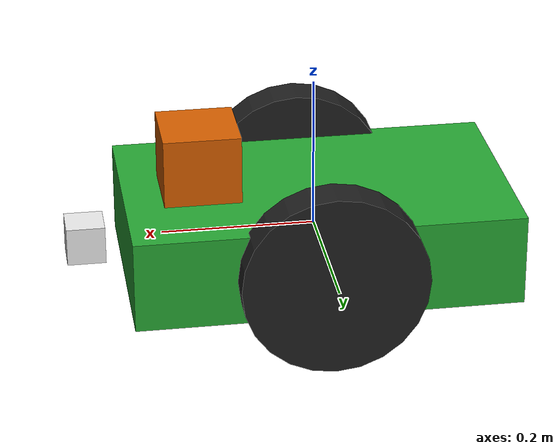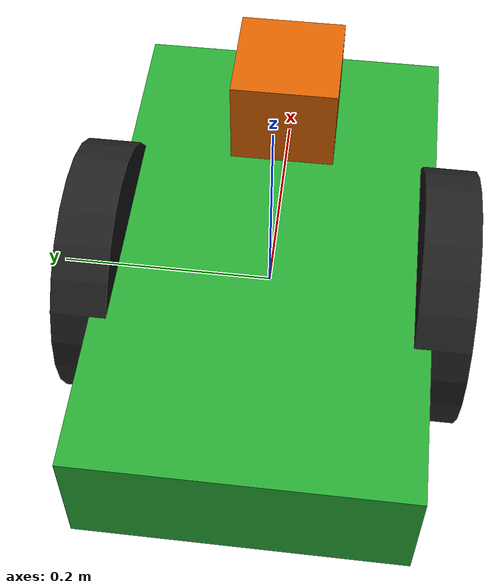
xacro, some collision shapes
<?xml version='1.0'?>

<robot name="my_robot" xmlns:xacro="http://www.ros.org/wiki/xacro">
  <xacro:include filename="$(find my_robot)/urdf/my_robot.gazebo" />

  <link name="robot_footprint"></link>

  <joint name="robot_footprint_joint" type="fixed">
    <origin xyz="0 0 0" rpy="0 0 0" />
    <parent link="robot_footprint"/>
    <child link="chassis" />
  </joint>

  <link name= 'left_wheel'>

    <inertial>
      <mass value="5.0"/>
      <origin xyz="0.0 0 0" rpy=" 0 1.5707 1.5707"/>
      <inertia
          ixx="0.1" ixy="0" ixz="0"
          iyy="0.1" iyz="0"
          izz="0.1"
      />
    </inertial>

    <collision name='collision'>
      <origin xyz="0 0 0" rpy="0 1.5707 1.5707"/>
      <geometry>
        <cylinder length="0.05" radius="0.12"/>
      </geometry>
    </collision>

    <visual name='left_wheel_visual'>
      <origin xyz="0 0 0" rpy="0 1.5707 1.5707"/>
      <geometry>
        <cylinder length="0.05" radius="0.12"/>
      </geometry>
    </visual>
  </link>

  <link name= 'right_wheel'>

    <inertial>
      <mass value="5.0"/>
      <origin xyz="0.0 0 0" rpy=" 0 1.5707 1.5707"/>
      <inertia
          ixx="0.1" ixy="0" ixz="0"
          iyy="0.1" iyz="0"
          izz="0.1"
      />
    </inertial>

    <collision name='collision'>
      <origin xyz="0 0 0" rpy="0 1.5707 1.5707"/>
      <geometry>
        <cylinder length="0.05" radius="0.12"/>
      </geometry>
    </collision>

    <visual name='right_wheel_visual'>
      <origin xyz="0 0 0" rpy="0 1.5707 1.5707"/>
      <geometry>
        <cylinder length="0.05" radius="0.12"/>
      </geometry>
    </visual>
  </link>

  <link name='chassis'>
    <pose>0 0 0.1 0 0 0</pose>

    <inertial>
      <mass value="15.0"/>
      <origin xyz="0.0 0 0" rpy=" 0 0 0"/>
      <inertia
          ixx="0.1" ixy="0" ixz="0"
          iyy="0.1" iyz="0"
          izz="0.1"
      />
    </inertial>

    <collision name='collision'>
      <origin xyz="0 0 0" rpy=" 0 0 0"/>
      <geometry>
        <box size=".5 .3 .12"/>
      </geometry>
    </collision>

    <visual name='chassis_visual'>
      <origin xyz="0 0 0" rpy=" 0 0 0"/>
      <geometry>
        <box size=".5 .3 .12"/>
      </geometry>
    </visual>

    <collision name='back_caster_collision'>
      <origin xyz="-0.15 0 -0.06" rpy=" 0 0 0"/>
      <geometry>
        <sphere radius="0.0599"/>
      </geometry>
    </collision>

    <visual name='back_caster_visual'>
      <origin xyz="-0.15 0 -0.06" rpy=" 0 0 0"/>
      <geometry>
        <sphere radius="0.06"/>
      </geometry>
    </visual>

    <collision name='front_caster_collision'>
      <origin xyz="0.15 0 -0.06" rpy=" 0 0 0"/>
      <geometry>
        <sphere radius="0.0599"/>
      </geometry>
    </collision>

    <visual name='front_caster_visual'>
      <origin xyz="0.15 0 -0.06" rpy=" 0 0 0"/>
      <geometry>
        <sphere radius="0.06"/>
      </geometry>
    </visual>

  </link>

  <joint type="continuous" name="left_wheel_hinge">
    <origin xyz="0 0.16 0" rpy="0 0 0"/>
    <child link="left_wheel"/>
    <parent link="chassis"/>
    <axis xyz="0 1 0" rpy="0 0 0"/>
    <limit effort="10000" velocity="1000"/>
    <dynamics damping="1.0" friction="1.0"/>
  </joint>

  <joint type="continuous" name="right_wheel_hinge">
    <origin xyz="0 -0.16 0" rpy="0 0 0"/>
    <child link="right_wheel"/>
    <parent link="chassis"/>
    <axis xyz="0 1 0" rpy="0 0 0"/>
    <limit effort="10000" velocity="1000"/>
    <dynamics damping="1.0" friction="1.0"/>
  </joint>

  <link name='camera'>

    <inertial>
      <mass value="0.1"/>
      <origin xyz="0 0 0" rpy=" 0 0 0"/>
      <inertia
          ixx="1e-6" ixy="0" ixz="0"
          iyy="1e-6" iyz="0"
          izz="1e-6"
      />
    </inertial>

    <collision name='collision'>
      <origin xyz="0 0 0" rpy=" 0 0 0"/>
      <geometry>
        <box size=".05 .05 .05"/>
      </geometry>
    </collision>

    <visual name='camera_visual'>
      <origin xyz="0 0 0" rpy=" 0 0 0"/>
      <geometry>
        <box size=".05 .05 .05"/>
      </geometry>
    </visual>
  </link>

  <joint type="fixed" name="camera_joint">
    <origin xyz="0.3 0 0" rpy="0 0 0"/>
    <child link="camera"/>
    <parent link="chassis"/>
    <axis xyz="0 1 0" rpy="0 0 0"/>
  </joint>

  <link name='hokuyo'>

    <inertial>
      <mass value="1e-5"/>
      <origin xyz="0 0 0" rpy=" 0 0 0"/>
      <inertia
          ixx="1e-6" ixy="0" ixz="0"
          iyy="1e-6" iyz="0"
          izz="1e-6"
      />
    </inertial>

    <collision name='collision'>
      <origin xyz="0 0 0" rpy=" 0 0 0"/>
      <geometry>
        <box size=".1 .1 .1"/>
      </geometry>
    </collision>

    <visual name='hokuyo_visual'>
      <origin xyz="0 0 0" rpy=" 0 0 0"/>
      <geometry>
        <mesh filename="package://my_robot/meshes/hokuyo.dae"/>
      </geometry>
    </visual>
  </link>

  <joint type="fixed" name="hokuyo_joint">
    <origin xyz="0.15 0 0.1" rpy="0 0 0"/>
    <child link="hokuyo"/>
    <parent link="chassis"/>
    <axis xyz="0 1 0" rpy="0 0 0"/>
  </joint>

  <joint name="camera_optical_joint" type="fixed">
    <origin xyz="0 0 0" rpy="-1.5707 0 -1.5707"/>
    <parent link="camera"/>
    <child link="camera_link_optical"/>
  </joint>

  <link name="camera_link_optical">
  </link>

  <gazebo reference="left_wheel">
    <material>Gazebo/Black</material>
  </gazebo>

  <gazebo reference="right_wheel">
    <material>Gazebo/Black</material>
  </gazebo>

  <gazebo reference="camera">
    <material>Gazebo/White</material>
  </gazebo>

  <gazebo reference="chassis">
    <material>Gazebo/Green</material>
  </gazebo>

</robot>
